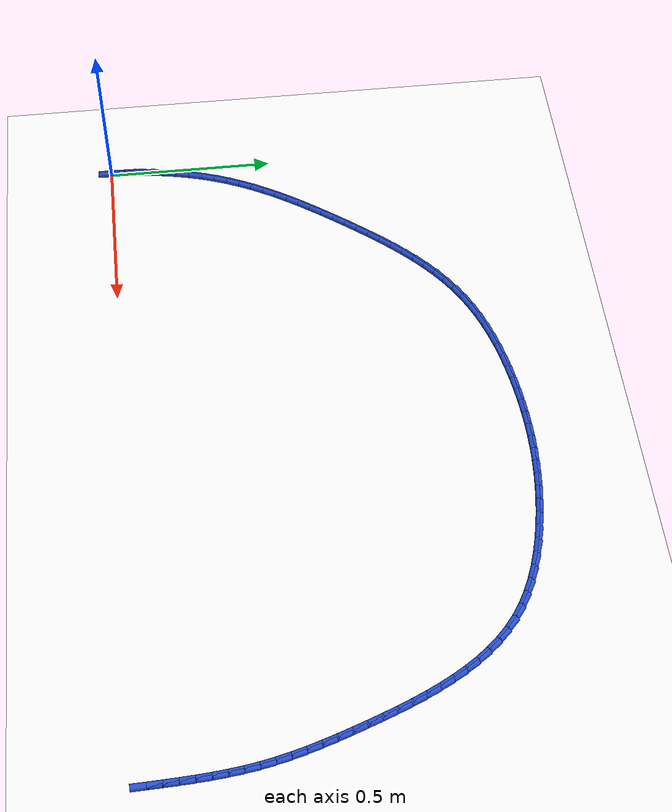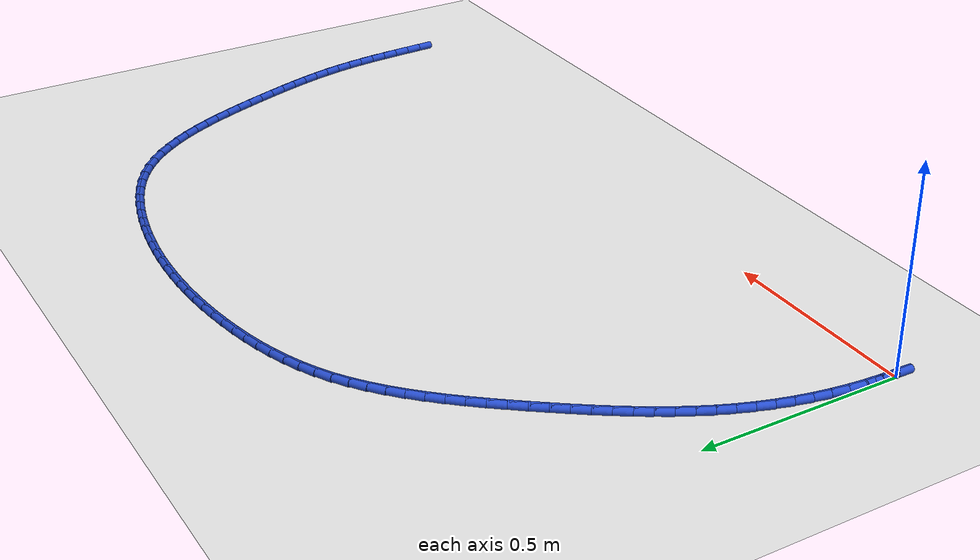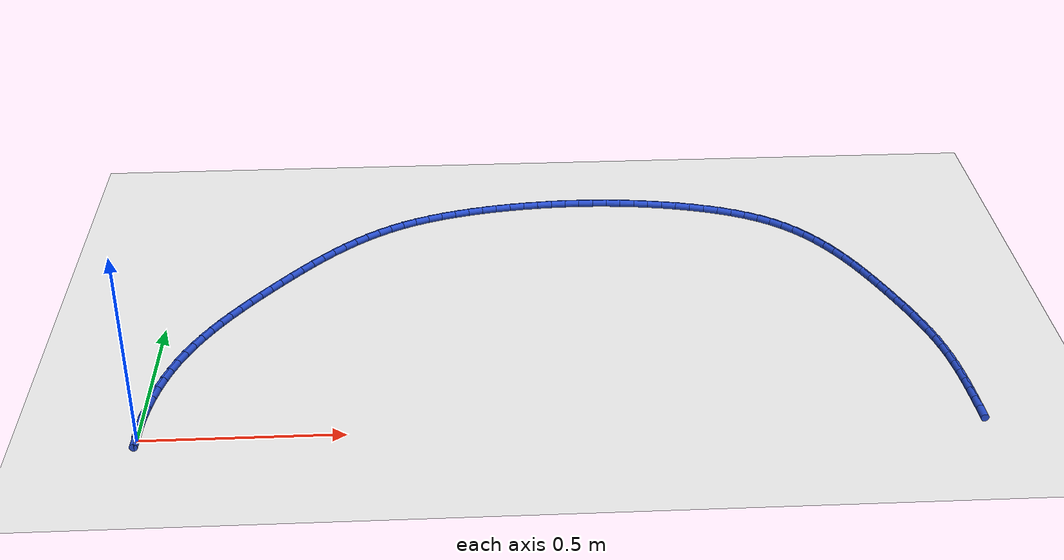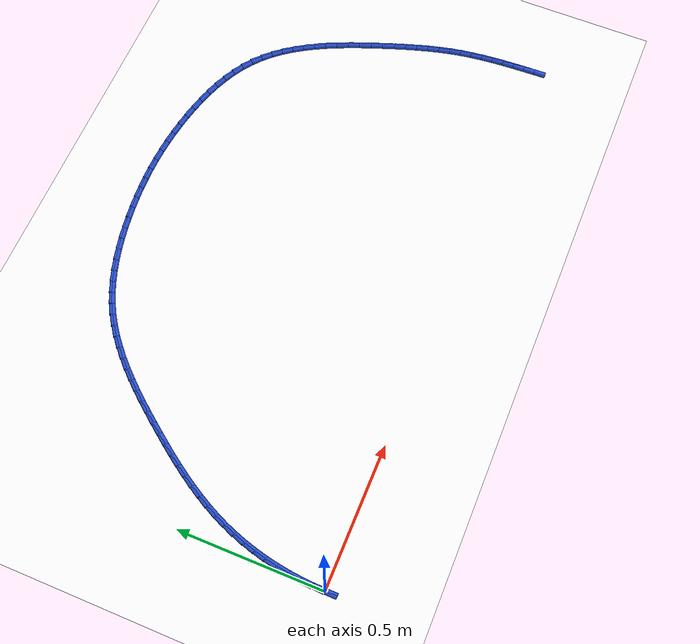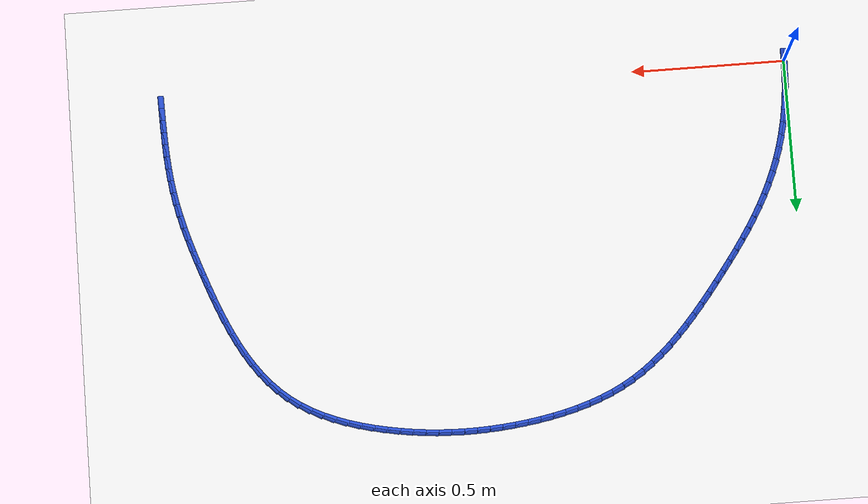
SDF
<sdf version="1.6">
 <world name="default">
  <model name="ground_plane">
   <static>1</static>
   <link name="link">
    <collision name="collision">
     <geometry><plane><normal>0 0 1</normal><size>100 100</size></plane></geometry>
     <surface><friction><ode><mu>100</mu><mu2>50</mu2></ode></friction></surface>
    </collision>
    <visual name="visual">
     <cast_shadows>0</cast_shadows>
     <geometry><plane><normal>0 0 1</normal><size>100 100</size></plane></geometry>
     <material>
      <script><uri>file://media/materials/scripts/gazebo.material</uri><name>Gazebo/WhiteGlow</name></script>
     </material>
    </visual>
   </link>
  </model>
  <model name="line">
   <link name="link_0">
    <pose>1.5612511283791264e-17 4.85722573273506e-17 0.01 0 1.57 1.552494242766472</pose>
    <collision name="collision">
     <geometry><cylinder><radius>0.01</radius><length>0.08</length></cylinder></geometry>
    </collision>
    <visual name="visual">
     <material>
      <script><name>Gazebo/Blue</name><uri>file://media/materials/scripts/gazebo.material</uri></script>
     </material>
     <geometry><cylinder><radius>0.01</radius><length>0.08</length></cylinder></geometry>
    </visual>
   </link>
   <link name="link_1">
    <pose>0.0007561603239106624 0.04131091800515218 0.01 0 1.57 1.5110941361753982</pose>
    <collision name="collision">
     <geometry><cylinder><radius>0.01</radius><length>0.08</length></cylinder></geometry>
    </collision>
    <visual name="visual">
     <material>
      <script><name>Gazebo/Blue</name><uri>file://media/materials/scripts/gazebo.material</uri></script>
     </material>
     <geometry><cylinder><radius>0.01</radius><length>0.08</length></cylinder></geometry>
    </visual>
   </link>
   <link name="link_2">
    <pose>0.0032270958861729637 0.08264941962122437 0.01 0 1.57 1.4697142427487881</pose>
    <collision name="collision">
     <geometry><cylinder><radius>0.01</radius><length>0.08</length></cylinder></geometry>
    </collision>
    <visual name="visual">
     <material>
      <script><name>Gazebo/Blue</name><uri>file://media/materials/scripts/gazebo.material</uri></script>
     </material>
     <geometry><cylinder><radius>0.01</radius><length>0.08</length></cylinder></geometry>
    </visual>
   </link>
   <link name="link_3">
    <pose>0.007411543099879433 0.12390485953049359 0.01 0 1.57 1.4281658494729377</pose>
    <collision name="collision">
     <geometry><cylinder><radius>0.01</radius><length>0.08</length></cylinder></geometry>
    </collision>
    <visual name="visual">
     <material>
      <script><name>Gazebo/Blue</name><uri>file://media/materials/scripts/gazebo.material</uri></script>
     </material>
     <geometry><cylinder><radius>0.01</radius><length>0.08</length></cylinder></geometry>
    </visual>
   </link>
   <link name="link_4">
    <pose>0.013308238378122613 0.16496659241523676 0.01 0 1.57 1.3862621743135723</pose>
    <collision name="collision">
     <geometry><cylinder><radius>0.01</radius><length>0.08</length></cylinder></geometry>
    </collision>
    <visual name="visual">
     <material>
      <script><name>Gazebo/Blue</name><uri>file://media/materials/scripts/gazebo.material</uri></script>
     </material>
     <geometry><cylinder><radius>0.01</radius><length>0.08</length></cylinder></geometry>
    </visual>
   </link>
   <link name="link_5">
    <pose>0.02091591813399502 0.20572397295773076 0.01 0 1.57 1.3438181536379181</pose>
    <collision name="collision">
     <geometry><cylinder><radius>0.01</radius><length>0.08</length></cylinder></geometry>
    </collision>
    <visual name="visual">
     <material>
      <script><name>Gazebo/Blue</name><uri>file://media/materials/scripts/gazebo.material</uri></script>
     </material>
     <geometry><cylinder><radius>0.01</radius><length>0.08</length></cylinder></geometry>
    </visual>
   </link>
   <link name="link_6">
    <pose>0.03023331878058918 0.24606635584025255 0.01 0 1.57 1.3006505023268</pose>
    <collision name="collision">
     <geometry><cylinder><radius>0.01</radius><length>0.08</length></cylinder></geometry>
    </collision>
    <visual name="visual">
     <material>
      <script><name>Gazebo/Blue</name><uri>file://media/materials/scripts/gazebo.material</uri></script>
     </material>
     <geometry><cylinder><radius>0.01</radius><length>0.08</length></cylinder></geometry>
    </visual>
   </link>
   <link name="link_7">
    <pose>0.04125917673099763 0.28588309574507903 0.01 0 1.57 1.2565781655612556</pose>
    <collision name="collision">
     <geometry><cylinder><radius>0.01</radius><length>0.08</length></cylinder></geometry>
    </collision>
    <visual name="visual">
     <material>
      <script><name>Gazebo/Blue</name><uri>file://media/materials/scripts/gazebo.material</uri></script>
     </material>
     <geometry><cylinder><radius>0.01</radius><length>0.08</length></cylinder></geometry>
    </visual>
   </link>
   <link name="link_8">
    <pose>0.05399222839831289 0.32506354735448717 0.01 0 1.57 1.2114234558439276</pose>
    <collision name="collision">
     <geometry><cylinder><radius>0.01</radius><length>0.08</length></cylinder></geometry>
    </collision>
    <visual name="visual">
     <material>
      <script><name>Gazebo/Blue</name><uri>file://media/materials/scripts/gazebo.material</uri></script>
     </material>
     <geometry><cylinder><radius>0.01</radius><length>0.08</length></cylinder></geometry>
    </visual>
   </link>
   <link name="link_9">
    <pose>0.06843120546788965 0.36349707185075997 0.01 0 1.57 1.1659762774763802</pose>
    <collision name="collision">
     <geometry><cylinder><radius>0.01</radius><length>0.08</length></cylinder></geometry>
    </collision>
    <visual name="visual">
     <material>
      <script><name>Gazebo/Blue</name><uri>file://media/materials/scripts/gazebo.material</uri></script>
     </material>
     <geometry><cylinder><radius>0.01</radius><length>0.08</length></cylinder></geometry>
    </visual>
   </link>
   <link name="link_10">
    <pose>0.08454787958623389 0.40111009685829574 0.01 0 1.57 1.1234726091473382</pose>
    <collision name="collision">
     <geometry><cylinder><radius>0.01</radius><length>0.08</length></cylinder></geometry>
    </collision>
    <visual name="visual">
     <material>
      <script><name>Gazebo/Blue</name><uri>file://media/materials/scripts/gazebo.material</uri></script>
     </material>
     <geometry><cylinder><radius>0.01</radius><length>0.08</length></cylinder></geometry>
    </visual>
   </link>
   <link name="link_11">
    <pose>0.10222369289270093 0.43795324097417 0.01 0 1.57 1.0847761233856386</pose>
    <collision name="collision">
     <geometry><cylinder><radius>0.01</radius><length>0.08</length></cylinder></geometry>
    </collision>
    <visual name="visual">
     <material>
      <script><name>Gazebo/Blue</name><uri>file://media/materials/scripts/gazebo.material</uri></script>
     </material>
     <geometry><cylinder><radius>0.01</radius><length>0.08</length></cylinder></geometry>
    </visual>
   </link>
   <link name="link_12">
    <pose>0.12132119100321208 0.4741031029839879 0.01 0 1.57 1.0500169967786583</pose>
    <collision name="collision">
     <geometry><cylinder><radius>0.01</radius><length>0.08</length></cylinder></geometry>
    </collision>
    <visual name="visual">
     <material>
      <script><name>Gazebo/Blue</name><uri>file://media/materials/scripts/gazebo.material</uri></script>
     </material>
     <geometry><cylinder><radius>0.01</radius><length>0.08</length></cylinder></geometry>
    </visual>
   </link>
   <link name="link_13">
    <pose>0.1417029195336885 0.5096362816733543 0.01 0 1.57 1.0192596497147077</pose>
    <collision name="collision">
     <geometry><cylinder><radius>0.01</radius><length>0.08</length></cylinder></geometry>
    </collision>
    <visual name="visual">
     <material>
      <script><name>Gazebo/Blue</name><uri>file://media/materials/scripts/gazebo.material</uri></script>
     </material>
     <geometry><cylinder><radius>0.01</radius><length>0.08</length></cylinder></geometry>
    </visual>
   </link>
   <link name="link_14">
    <pose>0.16323142410005137 0.5446293758278742 0.01 0 1.57 0.9925182560057357</pose>
    <collision name="collision">
     <geometry><cylinder><radius>0.01</radius><length>0.08</length></cylinder></geometry>
    </collision>
    <visual name="visual">
     <material>
      <script><name>Gazebo/Blue</name><uri>file://media/materials/scripts/gazebo.material</uri></script>
     </material>
     <geometry><cylinder><radius>0.01</radius><length>0.08</length></cylinder></geometry>
    </visual>
   </link>
   <link name="link_15">
    <pose>0.18576925031822195 0.5791589842331523 0.01 0 1.57 0.9697715484052462</pose>
    <collision name="collision">
     <geometry><cylinder><radius>0.01</radius><length>0.08</length></cylinder></geometry>
    </collision>
    <visual name="visual">
     <material>
      <script><name>Gazebo/Blue</name><uri>file://media/materials/scripts/gazebo.material</uri></script>
     </material>
     <geometry><cylinder><radius>0.01</radius><length>0.08</length></cylinder></geometry>
    </visual>
   </link>
   <link name="link_16">
    <pose>0.2091789438041216 0.6133017056747944 0.01 0 1.57 0.9509759353911914</pose>
    <collision name="collision">
     <geometry><cylinder><radius>0.01</radius><length>0.08</length></cylinder></geometry>
    </collision>
    <visual name="visual">
     <material>
      <script><name>Gazebo/Blue</name><uri>file://media/materials/scripts/gazebo.material</uri></script>
     </material>
     <geometry><cylinder><radius>0.01</radius><length>0.08</length></cylinder></geometry>
    </visual>
   </link>
   <link name="link_17">
    <pose>0.23332305017367136 0.6471341389384044 0.01 0 1.57 0.9360764523887087</pose>
    <collision name="collision">
     <geometry><cylinder><radius>0.01</radius><length>0.08</length></cylinder></geometry>
    </collision>
    <visual name="visual">
     <material>
      <script><name>Gazebo/Blue</name><uri>file://media/materials/scripts/gazebo.material</uri></script>
     </material>
     <geometry><cylinder><radius>0.01</radius><length>0.08</length></cylinder></geometry>
    </visual>
   </link>
   <link name="link_18">
    <pose>0.25806411504279236 0.6807328828095877 0.01 0 1.57 0.9249828219837867</pose>
    <collision name="collision">
     <geometry><cylinder><radius>0.01</radius><length>0.08</length></cylinder></geometry>
    </collision>
    <visual name="visual">
     <material>
      <script><name>Gazebo/Blue</name><uri>file://media/materials/scripts/gazebo.material</uri></script>
     </material>
     <geometry><cylinder><radius>0.01</radius><length>0.08</length></cylinder></geometry>
    </visual>
   </link>
   <link name="link_19">
    <pose>0.2832655937795968 0.7141734745171459 0.01 0 1.57 0.9147614266622315</pose>
    <collision name="collision">
     <geometry><cylinder><radius>0.01</radius><length>0.08</length></cylinder></geometry>
    </collision>
    <visual name="visual">
     <material>
      <script><name>Gazebo/Blue</name><uri>file://media/materials/scripts/gazebo.material</uri></script>
     </material>
     <geometry><cylinder><radius>0.01</radius><length>0.08</length></cylinder></geometry>
    </visual>
   </link>
   <link name="link_20">
    <pose>0.30887136092074996 0.7474376130816518 0.01 0 1.57 0.9002645387950842</pose>
    <collision name="collision">
     <geometry><cylinder><radius>0.01</radius><length>0.08</length></cylinder></geometry>
    </collision>
    <visual name="visual">
     <material>
      <script><name>Gazebo/Blue</name><uri>file://media/materials/scripts/gazebo.material</uri></script>
     </material>
     <geometry><cylinder><radius>0.01</radius><length>0.08</length></cylinder></geometry>
    </visual>
   </link>
   <link name="link_21">
    <pose>0.3349676275952109 0.780340910121552 0.01 0 1.57 0.8808826945066012</pose>
    <collision name="collision">
     <geometry><cylinder><radius>0.01</radius><length>0.08</length></cylinder></geometry>
    </collision>
    <visual name="visual">
     <material>
      <script><name>Gazebo/Blue</name><uri>file://media/materials/scripts/gazebo.material</uri></script>
     </material>
     <geometry><cylinder><radius>0.01</radius><length>0.08</length></cylinder></geometry>
    </visual>
   </link>
   <link name="link_22">
    <pose>0.3616551782339264 0.8126819721982758 0.01 0 1.57 0.8564794366318301</pose>
    <collision name="collision">
     <geometry><cylinder><radius>0.01</radius><length>0.08</length></cylinder></geometry>
    </collision>
    <visual name="visual">
     <material>
      <script><name>Gazebo/Blue</name><uri>file://media/materials/scripts/gazebo.material</uri></script>
     </material>
     <geometry><cylinder><radius>0.01</radius><length>0.08</length></cylinder></geometry>
    </visual>
   </link>
   <link name="link_23">
    <pose>0.38903479726784346 0.8442594058732529 0.01 0 1.57 0.8268806010101626</pose>
    <collision name="collision">
     <geometry><cylinder><radius>0.01</radius><length>0.08</length></cylinder></geometry>
    </collision>
    <visual name="visual">
     <material>
      <script><name>Gazebo/Blue</name><uri>file://media/materials/scripts/gazebo.material</uri></script>
     </material>
     <geometry><cylinder><radius>0.01</radius><length>0.08</length></cylinder></geometry>
    </visual>
   </link>
   <link name="link_24">
    <pose>0.417207269127909 0.8748718177079123 0.01 0 1.57 0.7918905310314991</pose>
    <collision name="collision">
     <geometry><cylinder><radius>0.01</radius><length>0.08</length></cylinder></geometry>
    </collision>
    <visual name="visual">
     <material>
      <script><name>Gazebo/Blue</name><uri>file://media/materials/scripts/gazebo.material</uri></script>
     </material>
     <geometry><cylinder><radius>0.01</radius><length>0.08</length></cylinder></geometry>
    </visual>
   </link>
   <link name="link_25">
    <pose>0.4462733782450701 0.9043178142636841 0.01 0 1.57 0.7513145899885959</pose>
    <collision name="collision">
     <geometry><cylinder><radius>0.01</radius><length>0.08</length></cylinder></geometry>
    </collision>
    <visual name="visual">
     <material>
      <script><name>Gazebo/Blue</name><uri>file://media/materials/scripts/gazebo.material</uri></script>
     </material>
     <geometry><cylinder><radius>0.01</radius><length>0.08</length></cylinder></geometry>
    </visual>
   </link>
   <link name="link_26">
    <pose>0.47633390905027334 0.9323960021019971 0.01 0 1.57 0.7049896891268153</pose>
    <collision name="collision">
     <geometry><cylinder><radius>0.01</radius><length>0.08</length></cylinder></geometry>
    </collision>
    <visual name="visual">
     <material>
      <script><name>Gazebo/Blue</name><uri>file://media/materials/scripts/gazebo.material</uri></script>
     </material>
     <geometry><cylinder><radius>0.01</radius><length>0.08</length></cylinder></geometry>
    </visual>
   </link>
   <link name="link_27">
    <pose>0.5074896459744659 0.9589049877842813 0.01 0 1.57 0.6528238842404018</pose>
    <collision name="collision">
     <geometry><cylinder><radius>0.01</radius><length>0.08</length></cylinder></geometry>
    </collision>
    <visual name="visual">
     <material>
      <script><name>Gazebo/Blue</name><uri>file://media/materials/scripts/gazebo.material</uri></script>
     </material>
     <geometry><cylinder><radius>0.01</radius><length>0.08</length></cylinder></geometry>
    </visual>
   </link>
   <link name="link_28">
    <pose>0.5398413734485945 0.9836433778719655 0.01 0 1.57 0.5948444535056344</pose>
    <collision name="collision">
     <geometry><cylinder><radius>0.01</radius><length>0.08</length></cylinder></geometry>
    </collision>
    <visual name="visual">
     <material>
      <script><name>Gazebo/Blue</name><uri>file://media/materials/scripts/gazebo.material</uri></script>
     </material>
     <geometry><cylinder><radius>0.01</radius><length>0.08</length></cylinder></geometry>
    </visual>
   </link>
   <link name="link_29">
    <pose>0.5734898759036063 1.0064097789264799 0.01 0 1.57 0.5313811504077449</pose>
    <collision name="collision">
     <geometry><cylinder><radius>0.01</radius><length>0.08</length></cylinder></geometry>
    </collision>
    <visual name="visual">
     <material>
      <script><name>Gazebo/Blue</name><uri>file://media/materials/scripts/gazebo.material</uri></script>
     </material>
     <geometry><cylinder><radius>0.01</radius><length>0.08</length></cylinder></geometry>
    </visual>
   </link>
   <link name="link_30">
    <pose>0.6085325280339045 1.0270069322213067 0.01 0 1.57 0.46730874825611696</pose>
    <collision name="collision">
     <geometry><cylinder><radius>0.01</radius><length>0.08</length></cylinder></geometry>
    </collision>
    <visual name="visual">
     <material>
      <script><name>Gazebo/Blue</name><uri>file://media/materials/scripts/gazebo.material</uri></script>
     </material>
     <geometry><cylinder><radius>0.01</radius><length>0.08</length></cylinder></geometry>
    </visual>
   </link>
   <link name="link_31">
    <pose>0.6449479389739791 1.0453815964300228 0.01 0 1.57 0.40834525245156716</pose>
    <collision name="collision">
     <geometry><cylinder><radius>0.01</radius><length>0.08</length></cylinder></geometry>
    </collision>
    <visual name="visual">
     <material>
      <script><name>Gazebo/Blue</name><uri>file://media/materials/scripts/gazebo.material</uri></script>
     </material>
     <geometry><cylinder><radius>0.01</radius><length>0.08</length></cylinder></geometry>
    </visual>
   </link>
   <link name="link_32">
    <pose>0.682567971095135 1.061658478171064 0.01 0 1.57 0.35472746600115135</pose>
    <collision name="collision">
     <geometry><cylinder><radius>0.01</radius><length>0.08</length></cylinder></geometry>
    </collision>
    <visual name="visual">
     <material>
      <script><name>Gazebo/Blue</name><uri>file://media/materials/scripts/gazebo.material</uri></script>
     </material>
     <geometry><cylinder><radius>0.01</radius><length>0.08</length></cylinder></geometry>
    </visual>
   </link>
   <link name="link_33">
    <pose>0.7212154021585478 1.0759733002356735 0.01 0 1.57 0.30623697293449614</pose>
    <collision name="collision">
     <geometry><cylinder><radius>0.01</radius><length>0.08</length></cylinder></geometry>
    </collision>
    <visual name="visual">
     <material>
      <script><name>Gazebo/Blue</name><uri>file://media/materials/scripts/gazebo.material</uri></script>
     </material>
     <geometry><cylinder><radius>0.01</radius><length>0.08</length></cylinder></geometry>
    </visual>
   </link>
   <link name="link_34">
    <pose>0.7607130099253938 1.0884617854150944 0.01 0 1.57 0.26259358930149873</pose>
    <collision name="collision">
     <geometry><cylinder><radius>0.01</radius><length>0.08</length></cylinder></geometry>
    </collision>
    <visual name="visual">
     <material>
      <script><name>Gazebo/Blue</name><uri>file://media/materials/scripts/gazebo.material</uri></script>
     </material>
     <geometry><cylinder><radius>0.01</radius><length>0.08</length></cylinder></geometry>
    </visual>
   </link>
   <link name="link_35">
    <pose>0.8008835721568484 1.09925965650057 0.01 0 1.57 0.22349156907910278</pose>
    <collision name="collision">
     <geometry><cylinder><radius>0.01</radius><length>0.08</length></cylinder></geometry>
    </collision>
    <visual name="visual">
     <material>
      <script><name>Gazebo/Blue</name><uri>file://media/materials/scripts/gazebo.material</uri></script>
     </material>
     <geometry><cylinder><radius>0.01</radius><length>0.08</length></cylinder></geometry>
    </visual>
   </link>
   <link name="link_36">
    <pose>0.8415498666140879 1.1085026362833432 0.01 0 1.57 0.18862602162037828</pose>
    <collision name="collision">
     <geometry><cylinder><radius>0.01</radius><length>0.08</length></cylinder></geometry>
    </collision>
    <visual name="visual">
     <material>
      <script><name>Gazebo/Blue</name><uri>file://media/materials/scripts/gazebo.material</uri></script>
     </material>
     <geometry><cylinder><radius>0.01</radius><length>0.08</length></cylinder></geometry>
    </visual>
   </link>
   <link name="link_37">
    <pose>0.8825346710582874 1.1163264475546575 0.01 0 1.57 0.15771125868965835</pose>
    <collision name="collision">
     <geometry><cylinder><radius>0.01</radius><length>0.08</length></cylinder></geometry>
    </collision>
    <visual name="visual">
     <material>
      <script><name>Gazebo/Blue</name><uri>file://media/materials/scripts/gazebo.material</uri></script>
     </material>
     <geometry><cylinder><radius>0.01</radius><length>0.08</length></cylinder></geometry>
    </visual>
   </link>
   <link name="link_38">
    <pose>0.9236607650763194 1.1228668115489195 0.01 0 1.57 0.1296892411614359</pose>
    <collision name="collision">
     <geometry><cylinder><radius>0.01</radius><length>0.08</length></cylinder></geometry>
    </collision>
    <visual name="visual">
     <material>
      <script><name>Gazebo/Blue</name><uri>file://media/materials/scripts/gazebo.material</uri></script>
     </material>
     <geometry><cylinder><radius>0.01</radius><length>0.08</length></cylinder></geometry>
    </visual>
   </link>
   <link name="link_39">
    <pose>0.9647851110631582 1.1282303005868752 0.01 0 1.57 0.10158019451259925</pose>
    <collision name="collision">
     <geometry><cylinder><radius>0.01</radius><length>0.08</length></cylinder></geometry>
    </collision>
    <visual name="visual">
     <material>
      <script><name>Gazebo/Blue</name><uri>file://media/materials/scripts/gazebo.material</uri></script>
     </material>
     <geometry><cylinder><radius>0.01</radius><length>0.08</length></cylinder></geometry>
    </visual>
   </link>
   <link name="link_40">
    <pose>1.0058862820261167 1.1324197852328615 0.01 0 1.57 0.07277865001213683</pose>
    <collision name="collision">
     <geometry><cylinder><radius>0.01</radius><length>0.08</length></cylinder></geometry>
    </collision>
    <visual name="visual">
     <material>
      <script><name>Gazebo/Blue</name><uri>file://media/materials/scripts/gazebo.material</uri></script>
     </material>
     <geometry><cylinder><radius>0.01</radius><length>0.08</length></cylinder></geometry>
    </visual>
   </link>
   <link name="link_41">
    <pose>1.0469698833413086 1.1354150845751108 0.01 0 1.57 0.04333448393730779</pose>
    <collision name="collision">
     <geometry><cylinder><radius>0.01</radius><length>0.08</length></cylinder></geometry>
    </collision>
    <visual name="visual">
     <material>
      <script><name>Gazebo/Blue</name><uri>file://media/materials/scripts/gazebo.material</uri></script>
     </material>
     <geometry><cylinder><radius>0.01</radius><length>0.08</length></cylinder></geometry>
    </visual>
   </link>
   <link name="link_42">
    <pose>1.0880415203848464 1.1371960177018554 0.01 0 1.57 0.013304518685758722</pose>
    <collision name="collision">
     <geometry><cylinder><radius>0.01</radius><length>0.08</length></cylinder></geometry>
    </collision>
    <visual name="visual">
     <material>
      <script><name>Gazebo/Blue</name><uri>file://media/materials/scripts/gazebo.material</uri></script>
     </material>
     <geometry><cylinder><radius>0.01</radius><length>0.08</length></cylinder></geometry>
    </visual>
   </link>
   <link name="link_43">
    <pose>1.1291067985328433 1.1377424037013266 0.01 0 1.57 -0.017247777832717304</pose>
    <collision name="collision">
     <geometry><cylinder><radius>0.01</radius><length>0.08</length></cylinder></geometry>
    </collision>
    <visual name="visual">
     <material>
      <script><name>Gazebo/Blue</name><uri>file://media/materials/scripts/gazebo.material</uri></script>
     </material>
     <geometry><cylinder><radius>0.01</radius><length>0.08</length></cylinder></geometry>
    </visual>
   </link>
   <link name="link_44">
    <pose>1.1701713231614126 1.1370340616617582 0.01 0 1.57 -0.048252778582215695</pose>
    <collision name="collision">
     <geometry><cylinder><radius>0.01</radius><length>0.08</length></cylinder></geometry>
    </collision>
    <visual name="visual">
     <material>
      <script><name>Gazebo/Blue</name><uri>file://media/materials/scripts/gazebo.material</uri></script>
     </material>
     <geometry><cylinder><radius>0.01</radius><length>0.08</length></cylinder></geometry>
    </visual>
   </link>
   <link name="link_45">
    <pose>1.2112406996466671 1.1350508106713817 0.01 0 1.57 -0.07963536946877868</pose>
    <collision name="collision">
     <geometry><cylinder><radius>0.01</radius><length>0.08</length></cylinder></geometry>
    </collision>
    <visual name="visual">
     <material>
      <script><name>Gazebo/Blue</name><uri>file://media/materials/scripts/gazebo.material</uri></script>
     </material>
     <geometry><cylinder><radius>0.01</radius><length>0.08</length></cylinder></geometry>
    </visual>
   </link>
   <link name="link_46">
    <pose>1.2523205333647196 1.1317724698184297 0.01 0 1.57 -0.11131579744496883</pose>
    <collision name="collision">
     <geometry><cylinder><radius>0.01</radius><length>0.08</length></cylinder></geometry>
    </collision>
    <visual name="visual">
     <material>
      <script><name>Gazebo/Blue</name><uri>file://media/materials/scripts/gazebo.material</uri></script>
     </material>
     <geometry><cylinder><radius>0.01</radius><length>0.08</length></cylinder></geometry>
    </visual>
   </link>
   <link name="link_47">
    <pose>1.2934164296916832 1.1271788581911333 0.01 0 1.57 -0.14321067508054178</pose>
    <collision name="collision">
     <geometry><cylinder><radius>0.01</radius><length>0.08</length></cylinder></geometry>
    </collision>
    <visual name="visual">
     <material>
      <script><name>Gazebo/Blue</name><uri>file://media/materials/scripts/gazebo.material</uri></script>
     </material>
     <geometry><cylinder><radius>0.01</radius><length>0.08</length></cylinder></geometry>
    </visual>
   </link>
   <link name="link_48">
    <pose>1.334533994003671 1.1212497948777258 0.01 0 1.57 -0.17523411257376645</pose>
    <collision name="collision">
     <geometry><cylinder><radius>0.01</radius><length>0.08</length></cylinder></geometry>
    </collision>
    <visual name="visual">
     <material>
      <script><name>Gazebo/Blue</name><uri>file://media/materials/scripts/gazebo.material</uri></script>
     </material>
     <geometry><cylinder><radius>0.01</radius><length>0.08</length></cylinder></geometry>
    </visual>
   </link>
   <link name="link_49">
    <pose>1.375678831676796 1.1139650989664391 0.01 0 1.57 -0.2077585654538869</pose>
    <collision name="collision">
     <geometry><cylinder><radius>0.01</radius><length>0.08</length></cylinder></geometry>
    </collision>
    <visual name="visual">
     <material>
      <script><name>Gazebo/Blue</name><uri>file://media/materials/scripts/gazebo.material</uri></script>
     </material>
     <geometry><cylinder><radius>0.01</radius><length>0.08</length></cylinder></geometry>
    </visual>
   </link>
   <link name="link_50">
    <pose>1.4168285381660686 1.105290728610439 0.01 0 1.57 -0.24415226316200395</pose>
    <collision name="collision">
     <geometry><cylinder><radius>0.01</radius><length>0.08</length></cylinder></geometry>
    </collision>
    <visual name="visual">
     <material>
      <script><name>Gazebo/Blue</name><uri>file://media/materials/scripts/gazebo.material</uri></script>
     </material>
     <geometry><cylinder><radius>0.01</radius><length>0.08</length></cylinder></geometry>
    </visual>
   </link>
   <link name="link_51">
    <pose>1.4577606398974763 1.0950936361924035 0.01 0 1.57 -0.2863271445213465</pose>
    <collision name="collision">
     <geometry><cylinder><radius>0.01</radius><length>0.08</length></cylinder></geometry>
    </collision>
    <visual name="visual">
     <material>
      <script><name>Gazebo/Blue</name><uri>file://media/materials/scripts/gazebo.material</uri></script>
     </material>
     <geometry><cylinder><radius>0.01</radius><length>0.08</length></cylinder></geometry>
    </visual>
   </link>
   <link name="link_52">
    <pose>1.4981656378658175 1.0831977088594298 0.01 0 1.57 -0.33492295416491824</pose>
    <collision name="collision">
     <geometry><cylinder><radius>0.01</radius><length>0.08</length></cylinder></geometry>
    </collision>
    <visual name="visual">
     <material>
      <script><name>Gazebo/Blue</name><uri>file://media/materials/scripts/gazebo.material</uri></script>
     </material>
     <geometry><cylinder><radius>0.01</radius><length>0.08</length></cylinder></geometry>
    </visual>
   </link>
   <link name="link_53">
    <pose>1.537733676189212 1.0694266571553186 0.01 0 1.57 -0.39065070604968116</pose>
    <collision name="collision">
     <geometry><cylinder><radius>0.01</radius><length>0.08</length></cylinder></geometry>
    </collision>
    <visual name="visual">
     <material>
      <script><name>Gazebo/Blue</name><uri>file://media/materials/scripts/gazebo.material</uri></script>
     </material>
     <geometry><cylinder><radius>0.01</radius><length>0.08</length></cylinder></geometry>
    </visual>
   </link>
   <link name="link_54">
    <pose>1.5761548989857816 1.0536041916238692 0.01 0 1.57 -0.45425214072454867</pose>
    <collision name="collision">
     <geometry><cylinder><radius>0.01</radius><length>0.08</length></cylinder></geometry>
    </collision>
    <visual name="visual">
     <material>
      <script><name>Gazebo/Blue</name><uri>file://media/materials/scripts/gazebo.material</uri></script>
     </material>
     <geometry><cylinder><radius>0.01</radius><length>0.08</length></cylinder></geometry>
    </visual>
   </link>
   <link name="link_55">
    <pose>1.6131194503736483 1.0355540228088822 0.01 0 1.57 -0.5264190329960129</pose>
    <collision name="collision">
     <geometry><cylinder><radius>0.01</radius><length>0.08</length></cylinder></geometry>
    </collision>
    <visual name="visual">
     <material>
      <script><name>Gazebo/Blue</name><uri>file://media/materials/scripts/gazebo.material</uri></script>
     </material>
     <geometry><cylinder><radius>0.01</radius><length>0.08</length></cylinder></geometry>
    </visual>
   </link>
   <link name="link_56">
    <pose>1.6483174744709315 1.0150998612541573 0.01 0 1.57 -0.6076657120524813</pose>
    <collision name="collision">
     <geometry><cylinder><radius>0.01</radius><length>0.08</length></cylinder></geometry>
    </collision>
    <visual name="visual">
     <material>
      <script><name>Gazebo/Blue</name><uri>file://media/materials/scripts/gazebo.material</uri></script>
     </material>
     <geometry><cylinder><radius>0.01</radius><length>0.08</length></cylinder></geometry>
    </visual>
   </link>
   <link name="link_57">
    <pose>1.681439115395754 0.9920654175034952 0.01 0 1.57 -0.6964221804945231</pose>
    <collision name="collision">
     <geometry><cylinder><radius>0.01</radius><length>0.08</length></cylinder></geometry>
    </collision>
    <visual name="visual">
     <material>
      <script><name>Gazebo/Blue</name><uri>file://media/materials/scripts/gazebo.material</uri></script>
     </material>
     <geometry><cylinder><radius>0.01</radius><length>0.08</length></cylinder></geometry>
    </visual>
   </link>
   <link name="link_58">
    <pose>1.7122262675955777 0.9663214893765767 0.01 0 1.57 -0.7818830817145667</pose>
    <collision name="collision">
     <geometry><cylinder><radius>0.01</radius><length>0.08</length></cylinder></geometry>
    </collision>
    <visual name="visual">
     <material>
      <script><name>Gazebo/Blue</name><uri>file://media/materials/scripts/gazebo.material</uri></script>
     </material>
     <geometry><cylinder><radius>0.01</radius><length>0.08</length></cylinder></geometry>
    </visual>
   </link>
   <link name="link_59">
    <pose>1.7407285555169023 0.9380188761451728 0.01 0 1.57 -0.8594376618038342</pose>
    <collision name="collision">
     <geometry><cylinder><radius>0.01</radius><length>0.08</length></cylinder></geometry>
    </collision>
    <visual name="visual">
     <material>
      <script><name>Gazebo/Blue</name><uri>file://media/materials/scripts/gazebo.material</uri></script>
     </material>
     <geometry><cylinder><radius>0.01</radius><length>0.08</length></cylinder></geometry>
    </visual>
   </link>
   <link name="link_60">
    <pose>1.767108897502782 0.9074114624339515 0.01 0 1.57 -0.9287103522166293</pose>
    <collision name="collision">
     <geometry><cylinder><radius>0.01</radius><length>0.08</length></cylinder></geometry>
    </collision>
    <visual name="visual">
     <material>
      <script><name>Gazebo/Blue</name><uri>file://media/materials/scripts/gazebo.material</uri></script>
     </material>
     <geometry><cylinder><radius>0.01</radius><length>0.08</length></cylinder></geometry>
    </visual>
   </link>
   <link name="link_61">
    <pose>1.791530388591372 0.8747532936412619 0.01 0 1.57 -0.9897413864450195</pose>
    <collision name="collision">
     <geometry><cylinder><radius>0.01</radius><length>0.08</length></cylinder></geometry>
    </collision>
    <visual name="visual">
     <material>
      <script><name>Gazebo/Blue</name><uri>file://media/materials/scripts/gazebo.material</uri></script>
     </material>
     <geometry><cylinder><radius>0.01</radius><length>0.08</length></cylinder></geometry>
    </visual>
   </link>
   <link name="link_62">
    <pose>1.8141561238208244 0.8402984151654523 0.01 0 1.57 -1.0428357217157629</pose>
    <collision name="collision">
     <geometry><cylinder><radius>0.01</radius><length>0.08</length></cylinder></geometry>
    </collision>
    <visual name="visual">
     <material>
      <script><name>Gazebo/Blue</name><uri>file://media/materials/scripts/gazebo.material</uri></script>
     </material>
     <geometry><cylinder><radius>0.01</radius><length>0.08</length></cylinder></geometry>
    </visual>
   </link>
   <link name="link_63">
    <pose>1.835149198229295 0.8043008724048719 0.01 0 1.57 -1.0884374734652231</pose>
    <collision name="collision">
     <geometry><cylinder><radius>0.01</radius><length>0.08</length></cylinder></geometry>
    </collision>
    <visual name="visual">
     <material>
      <script><name>Gazebo/Blue</name><uri>file://media/materials/scripts/gazebo.material</uri></script>
     </material>
     <geometry><cylinder><radius>0.01</radius><length>0.08</length></cylinder></geometry>
    </visual>
   </link>
   <link name="link_64">
    <pose>1.8546727068549367 0.76701471075787 0.01 0 1.57 -1.1270352909015737</pose>
    <collision name="collision">
     <geometry><cylinder><radius>0.01</radius><length>0.08</length></cylinder></geometry>
    </collision>
    <visual name="visual">
     <material>
      <script><name>Gazebo/Blue</name><uri>file://media/materials/scripts/gazebo.material</uri></script>
     </material>
     <geometry><cylinder><radius>0.01</radius><length>0.08</length></cylinder></geometry>
    </visual>
   </link>
   <link name="link_65">
    <pose>1.8728897447359043 0.7286939756227946 0.01 0 1.57 -1.1590974973085162</pose>
    <collision name="collision">
     <geometry><cylinder><radius>0.01</radius><length>0.08</length></cylinder></geometry>
    </collision>
    <visual name="visual">
     <material>
      <script><name>Gazebo/Blue</name><uri>file://media/materials/scripts/gazebo.material</uri></script>
     </material>
     <geometry><cylinder><radius>0.01</radius><length>0.08</length></cylinder></geometry>
    </visual>
   </link>
   <link name="link_66">
    <pose>1.8899634069103515 0.6895927123979946 0.01 0 1.57 -1.1850304166883414</pose>
    <collision name="collision">
     <geometry><cylinder><radius>0.01</radius><length>0.08</length></cylinder></geometry>
    </collision>
    <visual name="visual">
     <material>
      <script><name>Gazebo/Blue</name><uri>file://media/materials/scripts/gazebo.material</uri></script>
     </material>
     <geometry><cylinder><radius>0.01</radius><length>0.08</length></cylinder></geometry>
    </visual>
   </link>
   <link name="link_67">
    <pose>1.9060567884164326 0.6499649664818192 0.01 0 1.57 -1.205152310493083</pose>
    <collision name="collision">
     <geometry><cylinder><radius>0.01</radius><length>0.08</length></cylinder></geometry>
    </collision>
    <visual name="visual">
     <material>
      <script><name>Gazebo/Blue</name><uri>file://media/materials/scripts/gazebo.material</uri></script>
     </material>
     <geometry><cylinder><radius>0.01</radius><length>0.08</length></cylinder></geometry>
    </visual>
   </link>
   <link name="link_68">
    <pose>1.921332984292301 0.6100647832726166 0.01 0 1.57 -1.2196763027260304</pose>
    <collision name="collision">
     <geometry><cylinder><radius>0.01</radius><length>0.08</length></cylinder></geometry>
    </collision>
    <visual name="visual">
     <material>
      <script><name>Gazebo/Blue</name><uri>file://media/materials/scripts/gazebo.material</uri></script>
     </material>
     <geometry><cylinder><radius>0.01</radius><length>0.08</length></cylinder></geometry>
    </visual>
   </link>
   <link name="link_69">
    <pose>1.9359550895761122 0.5701462081687366 0.01 0 1.57 -1.2300650007393579</pose>
    <collision name="collision">
     <geometry><cylinder><radius>0.01</radius><length>0.08</length></cylinder></geometry>
    </collision>
    <visual name="visual">
     <material>
      <script><name>Gazebo/Blue</name><uri>file://media/materials/scripts/gazebo.material</uri></script>
     </material>
     <geometry><cylinder><radius>0.01</radius><length>0.08</length></cylinder></geometry>
    </visual>
   </link>
   <link name="link_70">
    <pose>1.9500407133650044 0.5304191474286275 0.01 0 1.57 -1.2429131837614549</pose>
    <collision name="collision">
     <geometry><cylinder><radius>0.01</radius><length>0.08</length></cylinder></geometry>
    </collision>
    <visual name="visual">
     <material>
      <script><name>Gazebo/Blue</name><uri>file://media/materials/scripts/gazebo.material</uri></script>
     </material>
     <geometry><cylinder><radius>0.01</radius><length>0.08</length></cylinder></geometry>
    </visual>
   </link>
   <link name="link_71">
    <pose>1.9634896688784405 0.4908821601889617 0.01 0 1.57 -1.2602811705988675</pose>
    <collision name="collision">
     <geometry><cylinder><radius>0.01</radius><length>0.08</length></cylinder></geometry>
    </collision>
    <visual name="visual">
     <material>
      <script><name>Gazebo/Blue</name><uri>file://media/materials/scripts/gazebo.material</uri></script>
     </material>
     <geometry><cylinder><radius>0.01</radius><length>0.08</length></cylinder></geometry>
    </visual>
   </link>
   <link name="link_72">
    <pose>1.9761366584740478 0.4514706226033771 0.01 0 1.57 -1.2822680899109813</pose>
    <collision name="collision">
     <geometry><cylinder><radius>0.01</radius><length>0.08</length></cylinder></geometry>
    </collision>
    <visual name="visual">
     <material>
      <script><name>Gazebo/Blue</name><uri>file://media/materials/scripts/gazebo.material</uri></script>
     </material>
     <geometry><cylinder><radius>0.01</radius><length>0.08</length></cylinder></geometry>
    </visual>
   </link>
   <link name="link_73">
    <pose>1.9878163727872293 0.4121198994503703 0.01 0 1.57 -1.308946882892289</pose>
    <collision name="collision">
     <geometry><cylinder><radius>0.01</radius><length>0.08</length></cylinder></geometry>
    </collision>
    <visual name="visual">
     <material>
      <script><name>Gazebo/Blue</name><uri>file://media/materials/scripts/gazebo.material</uri></script>
     </material>
     <geometry><cylinder><radius>0.01</radius><length>0.08</length></cylinder></geometry>
    </visual>
   </link>
   <link name="link_74">
    <pose>1.9983635024533877 0.3727653555084378 0.01 0 1.57 -1.3403490438998518</pose>
    <collision name="collision">
     <geometry><cylinder><radius>0.01</radius><length>0.08</length></cylinder></geometry>
    </collision>
    <visual name="visual">
     <material>
      <script><name>Gazebo/Blue</name><uri>file://media/materials/scripts/gazebo.material</uri></script>
     </material>
     <geometry><cylinder><radius>0.01</radius><length>0.08</length></cylinder></geometry>
    </visual>
   </link>
   <link name="link_75">
    <pose>2.007612738107926 0.3333423555560776 0.01 0 1.57 -1.3764257745130672</pose>
    <collision name="collision">
     <geometry><cylinder><radius>0.01</radius><length>0.08</length></cylinder></geometry>
    </collision>
    <visual name="visual">
     <material>
      <script><name>Gazebo/Blue</name><uri>file://media/materials/scripts/gazebo.material</uri></script>
     </material>
     <geometry><cylinder><radius>0.01</radius><length>0.08</length></cylinder></geometry>
    </visual>
   </link>
   <link name="link_76">
    <pose>2.015399561913764 0.2937863940140528 0.01 0 1.57 -1.4142198232439795</pose>
    <collision name="collision">
     <geometry><cylinder><radius>0.01</radius><length>0.08</length></cylinder></geometry>
    </collision>
    <visual name="visual">
     <material>
      <script><name>Gazebo/Blue</name><uri>file://media/materials/scripts/gazebo.material</uri></script>
     </material>
     <geometry><cylinder><radius>0.01</radius><length>0.08</length></cylinder></geometry>
    </visual>
   </link>
   <link name="link_77">
    <pose>2.021672463237034 0.25405147446376847 0.01 0 1.57 -1.4477586396243094</pose>
    <collision name="collision">
     <geometry><cylinder><radius>0.01</radius><length>0.08</length></cylinder></geometry>
    </collision>
    <visual name="visual">
     <material>
      <script><name>Gazebo/Blue</name><uri>file://media/materials/scripts/gazebo.material</uri></script>
     </material>
     <geometry><cylinder><radius>0.01</radius><length>0.08</length></cylinder></geometry>
    </visual>
   </link>
   <link name="link_78">
    <pose>2.026609347653988 0.2141291759806357 0.01 0 1.57 -1.4761846678138852</pose>
    <collision name="collision">
     <geometry><cylinder><radius>0.01</radius><length>0.08</length></cylinder></geometry>
    </collision>
    <visual name="visual">
     <material>
      <script><name>Gazebo/Blue</name><uri>file://media/materials/scripts/gazebo.material</uri></script>
     </material>
     <geometry><cylinder><radius>0.01</radius><length>0.08</length></cylinder></geometry>
    </visual>
   </link>
   <link name="link_79">
    <pose>2.0304159214828856 0.17401563105245937 0.01 0 1.57 -1.4994202535419485</pose>
    <collision name="collision">
     <geometry><cylinder><radius>0.01</radius><length>0.08</length></cylinder></geometry>
    </collision>
    <visual name="visual">
     <material>
      <script><name>Gazebo/Blue</name><uri>file://media/materials/scripts/gazebo.material</uri></script>
     </material>
     <geometry><cylinder><radius>0.01</radius><length>0.08</length></cylinder></geometry>
    </visual>
   </link>
   <link name="link_80">
    <pose>2.03329789104199 0.1337069721670457 0.01 0 1.57 -1.5174478936262359</pose>
    <collision name="collision">
     <geometry><cylinder><radius>0.01</radius><length>0.08</length></cylinder></geometry>
    </collision>
    <visual name="visual">
     <material>
      <script><name>Gazebo/Blue</name><uri>file://media/materials/scripts/gazebo.material</uri></script>
     </material>
     <geometry><cylinder><radius>0.01</radius><length>0.08</length></cylinder></geometry>
    </visual>
   </link>
   <link name="link_81">
    <pose>2.0354609626495606 0.09319933181219973 0.01 0 1.57 -1.5302913461692869</pose>
    <collision name="collision">
     <geometry><cylinder><radius>0.01</radius><length>0.08</length></cylinder></geometry>
    </collision>
    <visual name="visual">
     <material>
      <script><name>Gazebo/Blue</name><uri>file://media/materials/scripts/gazebo.material</uri></script>
     </material>
     <geometry><cylinder><radius>0.01</radius><length>0.08</length></cylinder></geometry>
    </visual>
   </link>
   <link name="link_82">
    <pose>2.0371108426238593 0.052488842475726646 0.01 0 1.57 -1.538000506073743</pose>
    <collision name="collision">
     <geometry><cylinder><radius>0.01</radius><length>0.08</length></cylinder></geometry>
    </collision>
    <visual name="visual">
     <material>
      <script><name>Gazebo/Blue</name><uri>file://media/materials/scripts/gazebo.material</uri></script>
     </material>
     <geometry><cylinder><radius>0.01</radius><length>0.08</length></cylinder></geometry>
    </visual>
   </link>
   <link name="link_83">
    <pose>2.0384532372831474 0.011571636645432648 0.01 0 1.57 -1.5406405711541282</pose>
    <collision name="collision">
     <geometry><cylinder><radius>0.01</radius><length>0.08</length></cylinder></geometry>
    </collision>
    <visual name="visual">
     <material>
      <script><name>Gazebo/Blue</name><uri>file://media/materials/scripts/gazebo.material</uri></script>
     </material>
     <geometry><cylinder><radius>0.01</radius><length>0.08</length></cylinder></geometry>
    </visual>
   </link>
   <link name="link_170">
    <pose>1.214306433183765e-17 2.7755575615628914e-17 0.01 0 1.57 1.5524293802811793</pose>
    <collision name="collision">
     <geometry><cylinder><radius>0.01</radius><length>0.08</length></cylinder></geometry>
    </collision>
    <visual name="visual">
     <material>
      <script><name>Gazebo/Blue</name><uri>file://media/materials/scripts/gazebo.material</uri></script>
     </material>
     <geometry><cylinder><radius>0.01</radius><length>0.08</length></cylinder></geometry>
    </visual>
   </link>
   <link name="link_171">
    <pose>0.0007591247495793707 0.041326378603516956 0.01 0 1.57 1.5524293802811793</pose>
    <collision name="collision">
     <geometry><cylinder><radius>0.01</radius><length>0.08</length></cylinder></geometry>
    </collision>
    <visual name="visual">
     <material>
      <script><name>Gazebo/Blue</name><uri>file://media/materials/scripts/gazebo.material</uri></script>
     </material>
     <geometry><cylinder><radius>0.01</radius><length>0.08</length></cylinder></geometry>
    </visual>
   </link>
  </model>
 </world>
</sdf>
